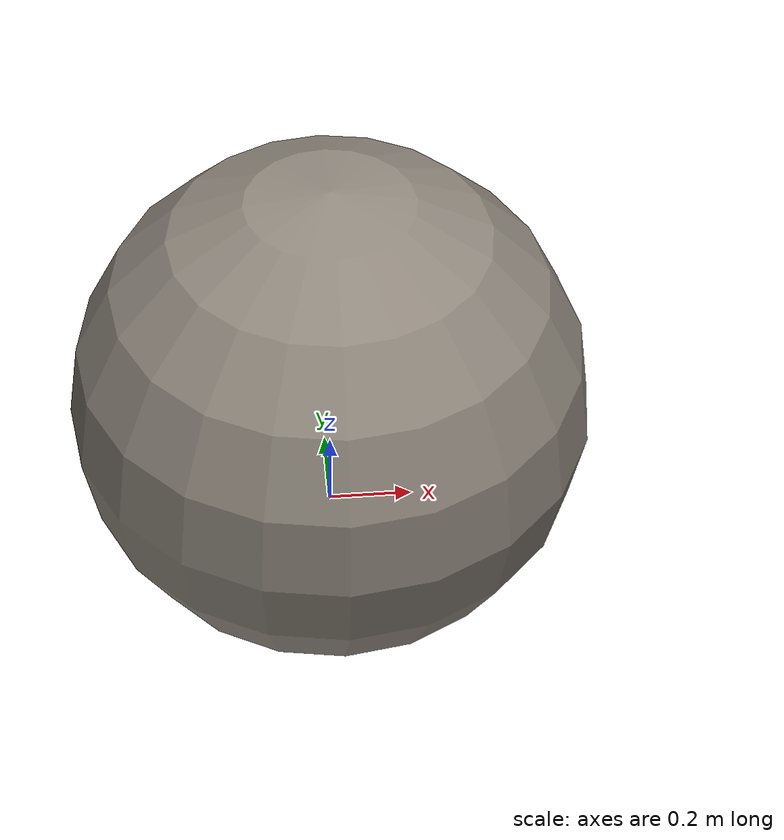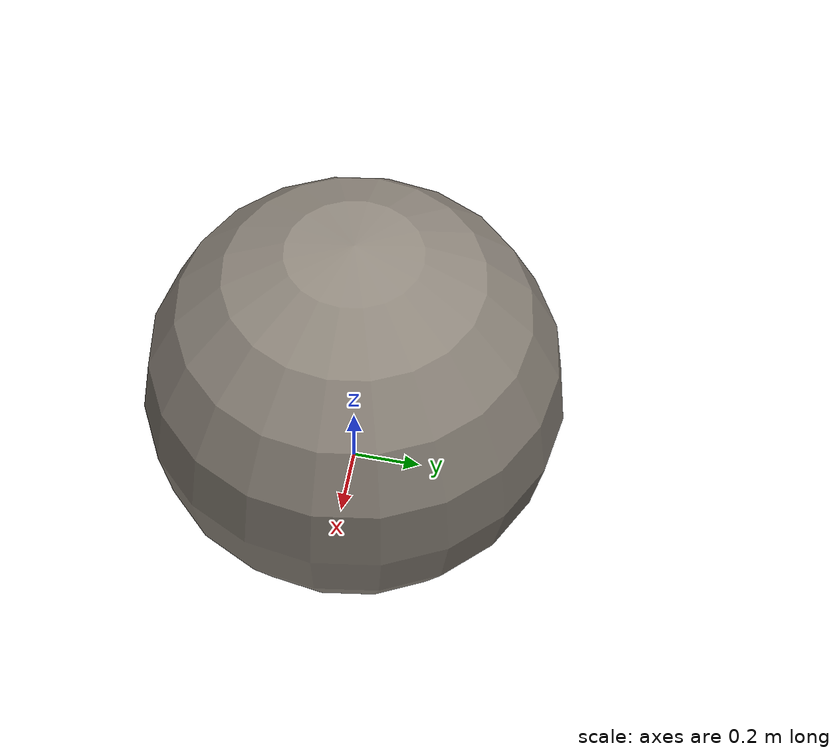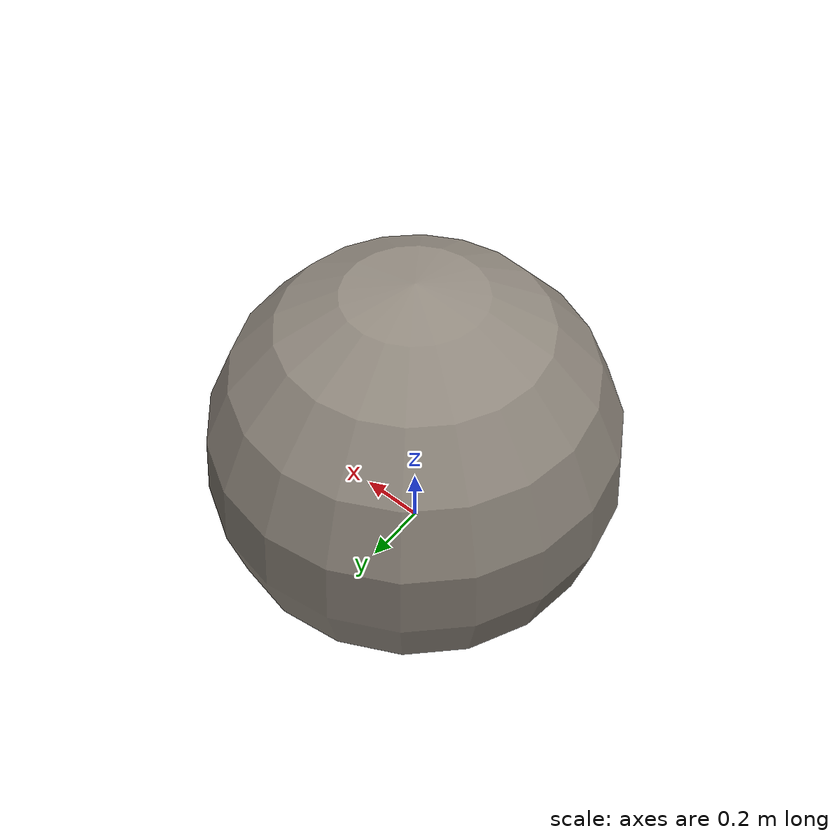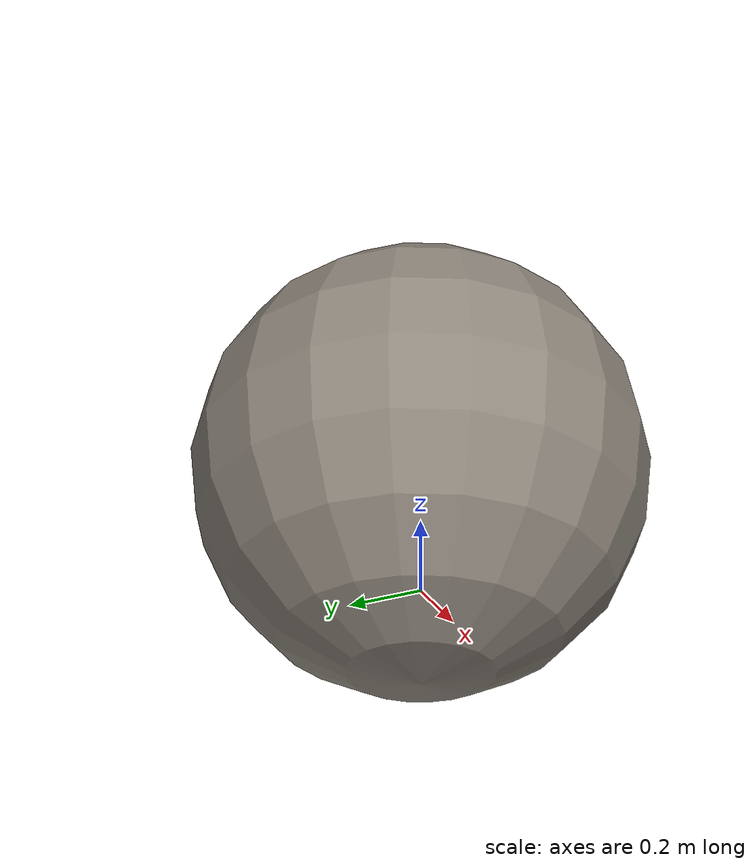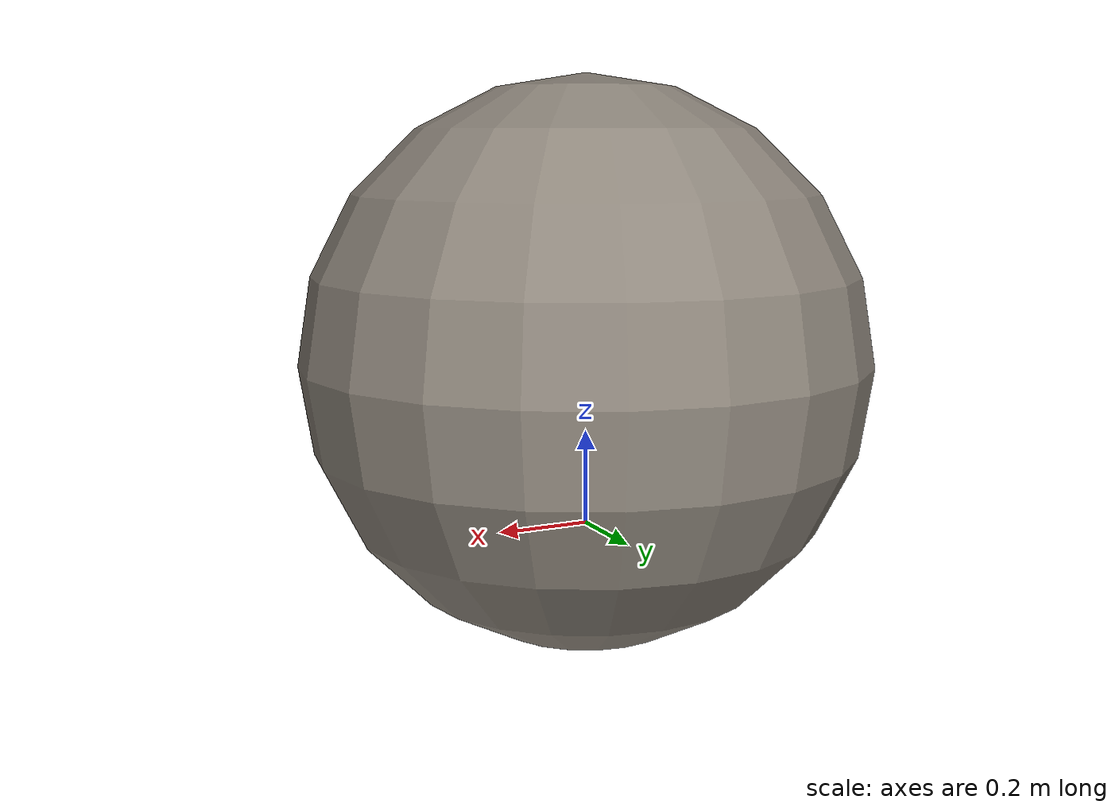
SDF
<?xml version="1.0" ?>
<sdf version="1.9">
  <model name="veg_rock">
    <static>true</static>
    <link name="link">
      <visual name="body">
        <geometry><sphere><radius>0.6</radius></sphere></geometry>
        <pose>0 0 0.35 0 0 0</pose>
        <material>
          <ambient>0.45 0.42 0.38 1</ambient>
          <diffuse>0.55 0.52 0.48 1</diffuse>
        </material>
      </visual>
    </link>
  </model>
</sdf>
